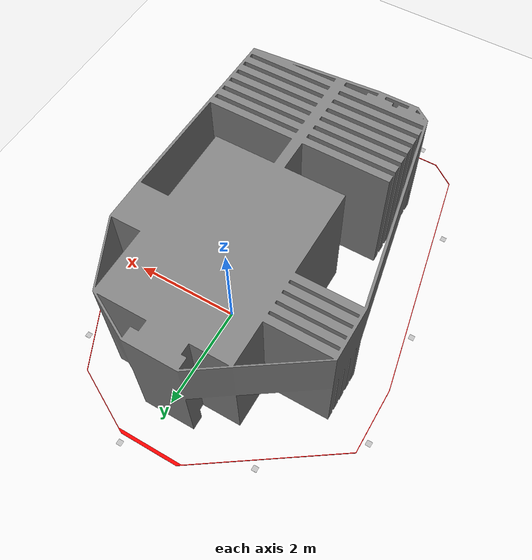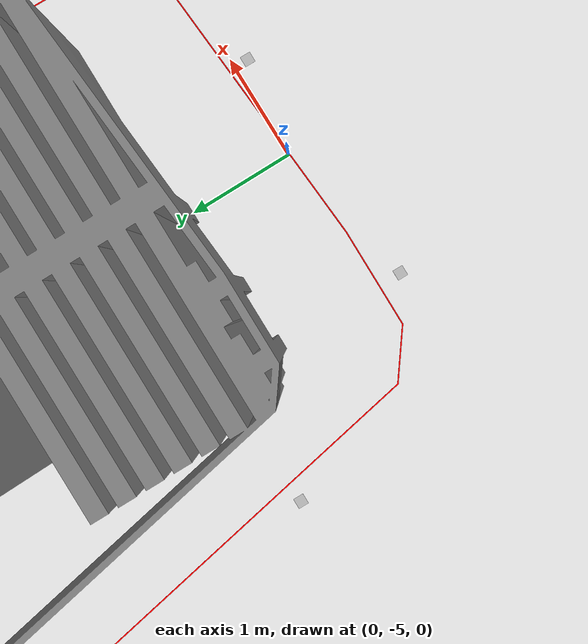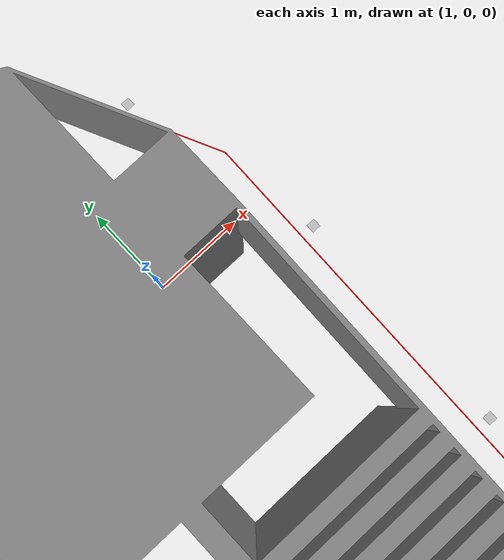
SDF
<sdf version="1.7">
 <world name="Transformer">
  <light name="sun" type="directional">
   <pose>0 0 10 0 -0 0</pose>
   <diffuse>0.8 0.8 0.8 1</diffuse>
   <specular>0.2 0.2 0.2 1</specular>
   <attenuation>
    <range>1000</range>
    <constant>0.9</constant>
    <linear>0.01</linear>
    <quadratic>0.001</quadratic>
   </attenuation>
   <direction>-0.5 0.1 -0.9</direction>
   <spot><inner_angle>0</inner_angle><outer_angle>0</outer_angle><falloff>0</falloff></spot>
  </light>
  <model name="white_ground_plane">
   <static>1</static>
   <link name="link">
    <collision name="collision">
     <geometry><plane><normal>0 0 1</normal><size>200 200</size></plane></geometry>
    </collision>
    <visual name="visual">
     <geometry><plane><normal>0 0 1</normal><size>200 200</size></plane></geometry>
     <material>
      <script><uri>file://media/materials/scripts/gazebo.material</uri><name>Gazebo/White</name></script>
     </material>
    </visual>
   </link>
  </model>
  <model name="hitachi_project_environment">
   <static>1</static>
   <link name="link">
    <collision name="transformer_collision_1">
     <geometry>
      <mesh>
       <uri>file:///home/ujualsin/ros2_ws/src/hitachi_project_environment/models/meshes/Transformer.stl</uri>
       <scale>0.5 0.5 0.5</scale>
      </mesh>
     </geometry>
    </collision>
    <visual name="transformer_visual_1">
     <geometry>
      <mesh>
       <uri>file:///home/ujualsin/ros2_ws/src/hitachi_project_environment/models/meshes/Transformer.stl</uri>
       <scale>0.5 0.5 0.5</scale>
      </mesh>
     </geometry>
     <material><ambient>0.5 0.5 0.5 1</ambient><diffuse>0.5 0.5 0.5 1</diffuse></material>
    </visual>
    <visual name="line_visual_2">
     <pose>0 0 0.001 0 -0 0</pose>
     <geometry>
      <mesh>
       <uri>file:///home/ujualsin/ros2_ws/src/hitachi_project_environment/models/meshes/Line.stl</uri>
       <scale>0.6 0.6 0.6</scale>
      </mesh>
     </geometry>
     <material><ambient>1 0 0 1</ambient><diffuse>1 0 0 1</diffuse></material>
    </visual>
   </link>
  </model>
  <gravity>0 0 -9.8</gravity>
  <magnetic_field>6e-06 2.3e-05 -4.2e-05</magnetic_field>
  <atmosphere type="adiabatic"/>
  <physics type="ode">
   <max_step_size>0.001</max_step_size>
   <real_time_factor>1</real_time_factor>
   <real_time_update_rate>1000</real_time_update_rate>
  </physics>
  <scene><ambient>0.4 0.4 0.4 1</ambient><background>0.7 0.7 0.7 1</background><shadows>1</shadows></scene>
  <audio><device>default</device></audio>
  <spherical_coordinates>
   <surface_model>EARTH_WGS84</surface_model>
   <latitude_deg>0</latitude_deg>
   <longitude_deg>0</longitude_deg>
   <elevation>0</elevation>
   <heading_deg>0</heading_deg>
  </spherical_coordinates>
  <model name="aruco_0">
   <static>1</static>
   <link name="link">
    <visual name="visual">
     <geometry><box><size>0.1 0.1 0.001</size></box></geometry>
     <material>
      <script>
       <uri>model://aruco_0/materials/scripts</uri>
       <uri>model://aruco_0/materials/textures</uri>
       <name>Aruco0/Marker</name>
      </script>
     </material>
    </visual>
    <collision name="collision"><geometry><box><size>0.1 0.1 0.001</size></box></geometry></collision>
   </link>
   <pose>2.51054 -3.201 0.006943 0 -0 0</pose>
  </model>
  <model name="aruco_1">
   <static>1</static>
   <link name="link">
    <visual name="visual">
     <geometry><box><size>0.1 0.1 0.001</size></box></geometry>
     <material>
      <script>
       <uri>model://aruco_1/materials/scripts</uri>
       <uri>model://aruco_1/materials/textures</uri>
       <name>Aruco1/Marker</name>
      </script>
     </material>
    </visual>
    <collision name="collision"><geometry><box><size>0.1 0.1 0.001</size></box></geometry></collision>
   </link>
   <pose>2.56241 -0.582878 0.006943 0 -0 0</pose>
  </model>
  <model name="aruco_2">
   <static>1</static>
   <link name="link">
    <visual name="visual">
     <geometry><box><size>0.1 0.1 0.001</size></box></geometry>
     <material>
      <script>
       <uri>model://aruco_2/materials/scripts</uri>
       <uri>model://aruco_2/materials/textures</uri>
       <name>Aruco2/Marker</name>
      </script>
     </material>
    </visual>
    <collision name="collision"><geometry><box><size>0.1 0.1 0.001</size></box></geometry></collision>
   </link>
   <pose>2.02958 1.67102 0.006943 0 -0 0</pose>
  </model>
  <model name="aruco_3">
   <static>1</static>
   <link name="link">
    <visual name="visual">
     <geometry><box><size>0.1 0.1 0.001</size></box></geometry>
     <material>
      <script>
       <uri>model://aruco_3/materials/scripts</uri>
       <uri>model://aruco_3/materials/textures</uri>
       <name>Aruco3/Marker</name>
      </script>
     </material>
    </visual>
    <collision name="collision"><geometry><box><size>0.1 0.1 0.001</size></box></geometry></collision>
   </link>
   <pose>0.351743 3.02532 0.006943 0 -0 0</pose>
  </model>
  <model name="aruco_4">
   <static>1</static>
   <link name="link">
    <visual name="visual">
     <geometry><box><size>0.1 0.1 0.001</size></box></geometry>
     <material>
      <script>
       <uri>model://aruco_4/materials/scripts</uri>
       <uri>model://aruco_4/materials/textures</uri>
       <name>Aruco4/Marker</name>
      </script>
     </material>
    </visual>
    <collision name="collision"><geometry><box><size>0.1 0.1 0.001</size></box></geometry></collision>
   </link>
   <pose>-1.85735 2.26292 0.006943 0 -0 0</pose>
  </model>
  <model name="aruco_5">
   <static>1</static>
   <link name="link">
    <visual name="visual">
     <geometry><box><size>0.1 0.1 0.001</size></box></geometry>
     <material>
      <script>
       <uri>model://aruco_5/materials/scripts</uri>
       <uri>model://aruco_5/materials/textures</uri>
       <name>Aruco5/Marker</name>
      </script>
     </material>
    </visual>
    <collision name="collision"><geometry><box><size>0.1 0.1 0.001</size></box></geometry></collision>
   </link>
   <pose>-3.0818 -1.22764 0.006943 0 -0 0</pose>
  </model>
  <model name="aruco_6">
   <static>1</static>
   <link name="link">
    <visual name="visual">
     <geometry><box><size>0.1 0.1 0.001</size></box></geometry>
     <material>
      <script>
       <uri>model://aruco_6/materials/scripts</uri>
       <uri>model://aruco_6/materials/textures</uri>
       <name>Aruco6/Marker</name>
      </script>
     </material>
    </visual>
    <collision name="collision"><geometry><box><size>0.1 0.1 0.001</size></box></geometry></collision>
   </link>
   <pose>-3.30187 0.931401 0.006943 0 -0 0</pose>
  </model>
  <model name="aruco_7">
   <static>1</static>
   <link name="link">
    <visual name="visual">
     <geometry><box><size>0.1 0.1 0.001</size></box></geometry>
     <material>
      <script>
       <uri>model://aruco_7/materials/scripts</uri>
       <uri>model://aruco_7/materials/textures</uri>
       <name>Aruco7/Marker</name>
      </script>
     </material>
    </visual>
    <collision name="collision"><geometry><box><size>0.1 0.1 0.001</size></box></geometry></collision>
   </link>
   <pose>-2.70917 -3.47177 0.006943 0 -0 0</pose>
  </model>
  <model name="aruco_8">
   <static>1</static>
   <link name="link">
    <visual name="visual">
     <geometry><box><size>0.1 0.1 0.001</size></box></geometry>
     <material>
      <script>
       <uri>model://aruco_8/materials/scripts</uri>
       <uri>model://aruco_8/materials/textures</uri>
       <name>Aruco8/Marker</name>
      </script>
     </material>
    </visual>
    <collision name="collision"><geometry><box><size>0.1 0.1 0.001</size></box></geometry></collision>
   </link>
   <pose>-1.42631 -5.30261 0.006943 0 -0 0</pose>
  </model>
  <model name="aruco_9">
   <static>1</static>
   <link name="link">
    <visual name="visual">
     <geometry><box><size>0.1 0.1 0.001</size></box></geometry>
     <material>
      <script>
       <uri>model://aruco_9/materials/scripts</uri>
       <uri>model://aruco_9/materials/textures</uri>
       <name>Aruco9/Marker</name>
      </script>
     </material>
    </visual>
    <collision name="collision"><geometry><box><size>0.1 0.1 0.001</size></box></geometry></collision>
   </link>
   <pose>0.923339 -5.13537 0.006943 0 -0 0</pose>
  </model>
 </world>
</sdf>
